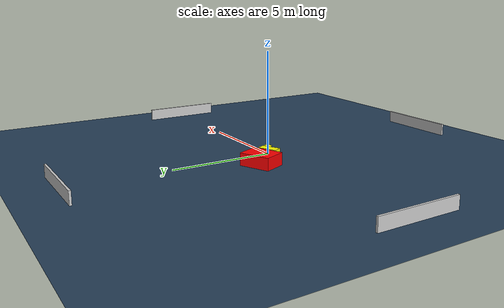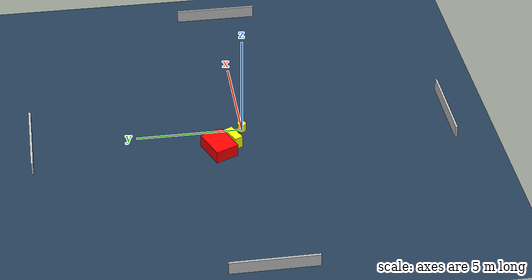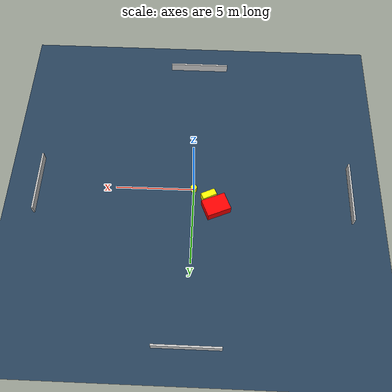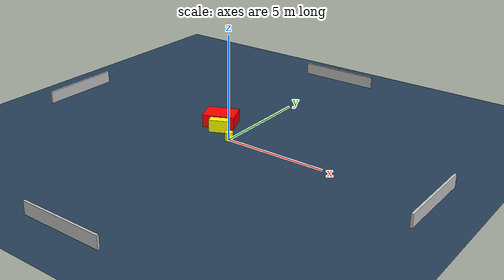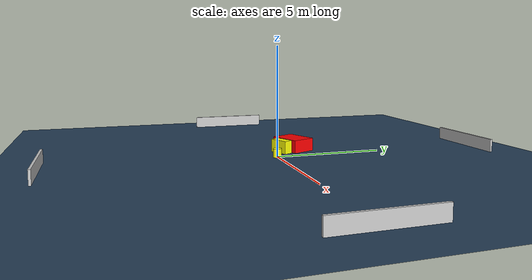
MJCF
<?xml version="1.0" ?>
<mujoco model="generated_environment">
  <option timestep="0.01" integrator="RK4" cone="elliptic"/>
  <default>
    <geom density="1"/>
  </default>
  <asset>
    <texture builtin="gradient" height="3072" name="skybox" rgb1="0.3 0.5 0.7" rgb2="0 0 0" type="skybox" width="512"/>
    <texture builtin="checker" height="300" name="groundplane" rgb1="0.2 0.3 0.4" rgb2="0.1 0.2 0.3" type="2d" width="300"/>
    <material name="groundplane" reflectance="0.2" texrepeat="5 5" texture="groundplane"/>
  </asset>
  <worldbody>
    <light dir="0 0 -1" directional="true" pos="0 0 1.5"/>
    <geom condim="3" friction="0.5 0.005 0.001" material="groundplane" name="floor" pos="0 0 0" size="0 0 0.05" type="plane"/>
    <body name="walls">
      <geom name="wall_1" condim="4" pos="-10.0 0.0 0.3" rgba="0.800000011920929 0.800000011920929 0.800000011920929 1.0" size="0.05 2.0 0.3" type="box"/>
      <geom name="wall_2" condim="4" pos="10.0 0.0 0.3" rgba="0.800000011920929 0.800000011920929 0.800000011920929 1.0" size="0.05 2.0 0.3" type="box"/>
      <geom name="wall_3" condim="4" pos="0.0 -10.0 0.3" rgba="0.800000011920929 0.800000011920929 0.800000011920929 1.0" size="2.0 0.05 0.3" type="box"/>
      <geom name="wall_4" condim="4" pos="0.0 10.0 0.3" rgba="0.800000011920929 0.800000011920929 0.800000011920929 1.0" size="2.0 0.05 0.3" type="box"/>
    </body>
    <body name="robot">
      <joint name="joint_x" type="slide" pos="0 0 0" axis="1 0 0"/>
      <joint name="joint_y" type="slide" pos="0 0 0" axis="0 1 0"/>
      <geom name="robot" type="cylinder" pos="0.0 0.0 0.2" size="0.2 0.2 0.0" mass="5.0" friction="1.0 0.005 0.0001" condim="4" rgba="1.0 1.0 0.0 1.0"/>
    </body>
    <body name="obstacle_1_movable">
      <geom name="obstacle_1_movable" condim="4" pos="-0.9724052297823639 0.5306857433627726 0.3" euler="0 0 205.44738620021505" friction="0.0 0.005 0.001" rgba="1.0 1.0 0.0 1.0" size="0.4656587645138308 0.21124692573102138 0.3" type="box" mass="0.1"/>
      <joint type="free"/>
    </body>
    <body name="obstacle_2_static">
      <geom name="obstacle_2_static" condim="4" pos="-1.450993853512356 1.2673642587634444 0.3" euler="0 0 203.27569839131002" friction="0.0 0.005 0.001" rgba="1.0 0.0 0.0 1.0" size="0.7730156707740456 0.5723572005097726 0.3" type="box"/>
    </body>
  </worldbody>
  <actuator>
    <motor name="actuator_x" joint="joint_x" gear="1" ctrlrange="-1 1"/>
    <motor name="actuator_y" joint="joint_y" gear="1" ctrlrange="-1 1"/>
  </actuator>
</mujoco>
